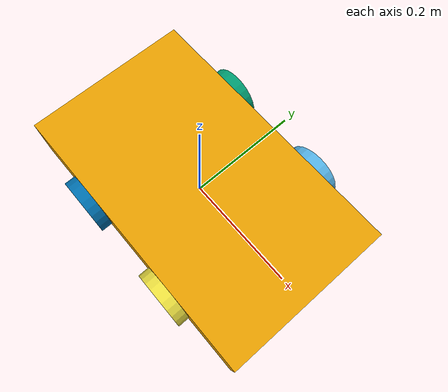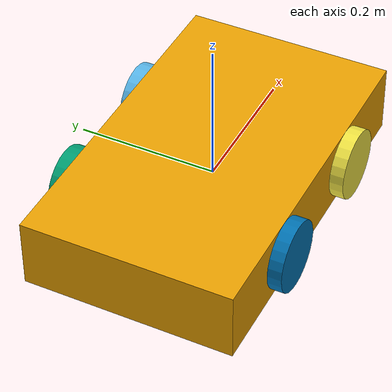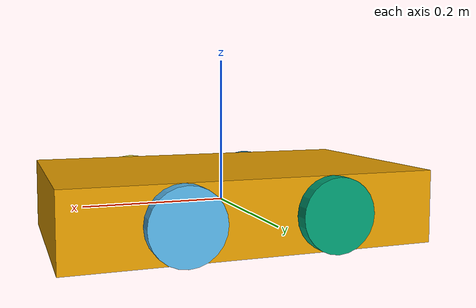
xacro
<?xml version="1.0"?>
<robot xmlns:xacro="http://www.ros.org/wiki/xacro" name="traction_robot">

  <!-- Links (châssis + roues) -->
  <link name="base_link">
    <visual>
      <geometry>
        <box size="0.5 0.3 0.1"/>
      </geometry>
    </visual>
    <collision>
      <geometry>
        <box size="0.5 0.3 0.1"/>
      </geometry>
    </collision>
    <inertial>
      <mass value="1.0"/>
      <inertia ixx="0.1" iyy="0.1" izz="0.1"
               ixy="0.0" ixz="0.0" iyz="0.0"/>
    </inertial>
  </link>

  <link name="wheel_frontleft">
    <visual>
    <origin xyz="0 0 0" rpy="0 0 0"/>
      <geometry>
        <cylinder radius="0.05" length="0.02"/>
      </geometry>
    </visual>
    <collision>
      <origin xyz="0 0 0" rpy="0 0 0"/>
      <geometry>
        <cylinder radius="0.05" length="0.02"/>
      </geometry>
    </collision>
      <inertial>
      <mass value="0.1"/>
      <inertia ixx="1e-3" iyy="1e-3" izz="1e-3"
               ixy="0.0" ixz="0.0" iyz="0.0"/>
    </inertial>
  </link>

    <link name="wheel_rearleft">
    <visual>
    <origin xyz="0 0 0" rpy="0 0 0"/>
      <geometry>
        <cylinder radius="0.05" length="0.02"/>
      </geometry>
    </visual>
    <collision>
      <origin xyz="0 0 0" rpy="0 0 0"/>
      <geometry>
        <cylinder radius="0.05" length="0.02"/>
      </geometry>
    </collision>
      <inertial>
      <mass value="0.1"/>
      <inertia ixx="1e-3" iyy="1e-3" izz="1e-3"
               ixy="0.0" ixz="0.0" iyz="0.0"/>
    </inertial>
  </link>

  <link name="wheel_frontright">
    <visual>
        <origin xyz="0 0 0" rpy="0 0 0"/>
      <geometry>
        <cylinder radius="0.05" length="0.02"/>

      </geometry>
    </visual>
    <collision>
      <origin xyz="0 0 0" rpy="0 0 0"/>
      <geometry>
        <cylinder radius="0.05" length="0.02"/>
      </geometry>
    </collision>
      <inertial>
      <mass value="0.1"/>
      <inertia ixx="1e-3" iyy="1e-3" izz="1e-3"
               ixy="0.0" ixz="0.0" iyz="0.0"/>
    </inertial>
  </link>

    <link name="wheel_rearright">
    <visual>
        <origin xyz="0 0 0" rpy="0 0 0"/>
      <geometry>
        <cylinder radius="0.05" length="0.02"/>

      </geometry>
    </visual>
    <collision>
      <origin xyz="0 0 0" rpy="0 0 0"/>
      <geometry>
        <cylinder radius="0.05" length="0.02"/>
      </geometry>
    </collision>
      <inertial>
      <mass value="0.1"/>
      <inertia ixx="1e-3" iyy="1e-3" izz="1e-3"
               ixy="0.0" ixz="0.0" iyz="0.0"/>
    </inertial>
  </link>

  <!-- Joints -->
  <joint name="joint_wheel_frontleft" type="continuous">
    <parent link="base_link"/>
    <child link="wheel_frontleft"/>
    <origin xyz="0.1 0.16 0" rpy="1.5708 0 0"/>
    <axis xyz="0 1 0"/>
  </joint>

  <joint name="joint_wheel_rearleft" type="continuous">
    <parent link="base_link"/>
    <child link="wheel_rearleft"/>
    <origin xyz="-0.1 0.16 0" rpy="1.5708 0 0"/>
    <axis xyz="0 1 0"/>
  </joint>

  <joint name="joint_wheel_frontright" type="continuous">
    <parent link="base_link"/>
    <child link="wheel_frontright"/>
    <origin xyz="0.1 -0.16 0" rpy="1.5708 0 0"/>
    <axis xyz="0 1 0"/>
  </joint>

    <joint name="joint_wheel_rearright" type="continuous">
    <parent link="base_link"/>
    <child link="wheel_rearright"/>
    <origin xyz="-0.1 -0.16 0" rpy="1.5708 0 0"/>
    <axis xyz="0 1 0"/>
  </joint>

  <!-- ROS2 Control -->
  <ros2_control name="traction_system_interface/TractionSystem" type="system">
    <hardware>
      <plugin>traction_system_interface/TractionSystemInterface</plugin>
    </hardware>

    <joint name="joint_wheel_frontleft">
      <command_interface name="velocity"/>
      <state_interface name="position"/>
      <state_interface name="velocity"/>
    </joint>

    <joint name="joint_wheel_frontright">
      <command_interface name="velocity"/>
      <state_interface name="position"/>
      <state_interface name="velocity"/>
    </joint>
  </ros2_control>

  <!-- Gazebo Plugin -->

</robot>
